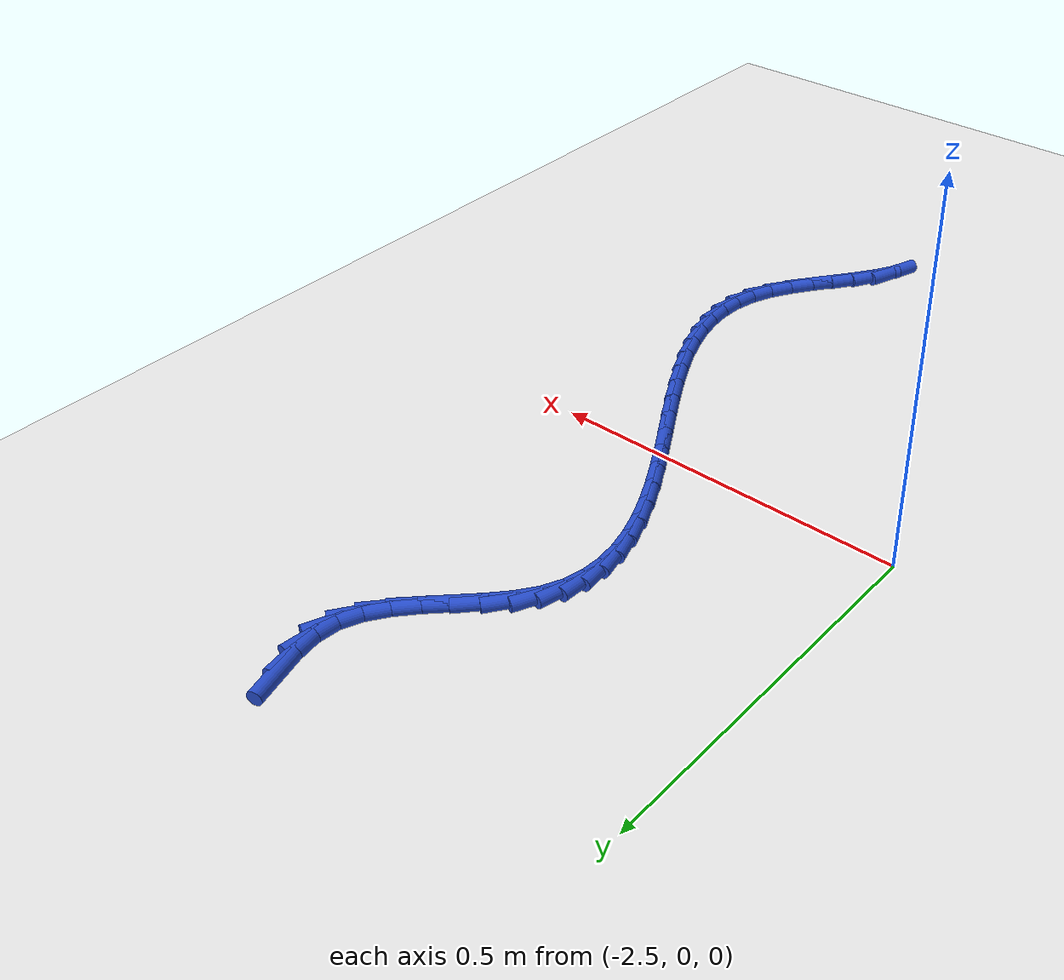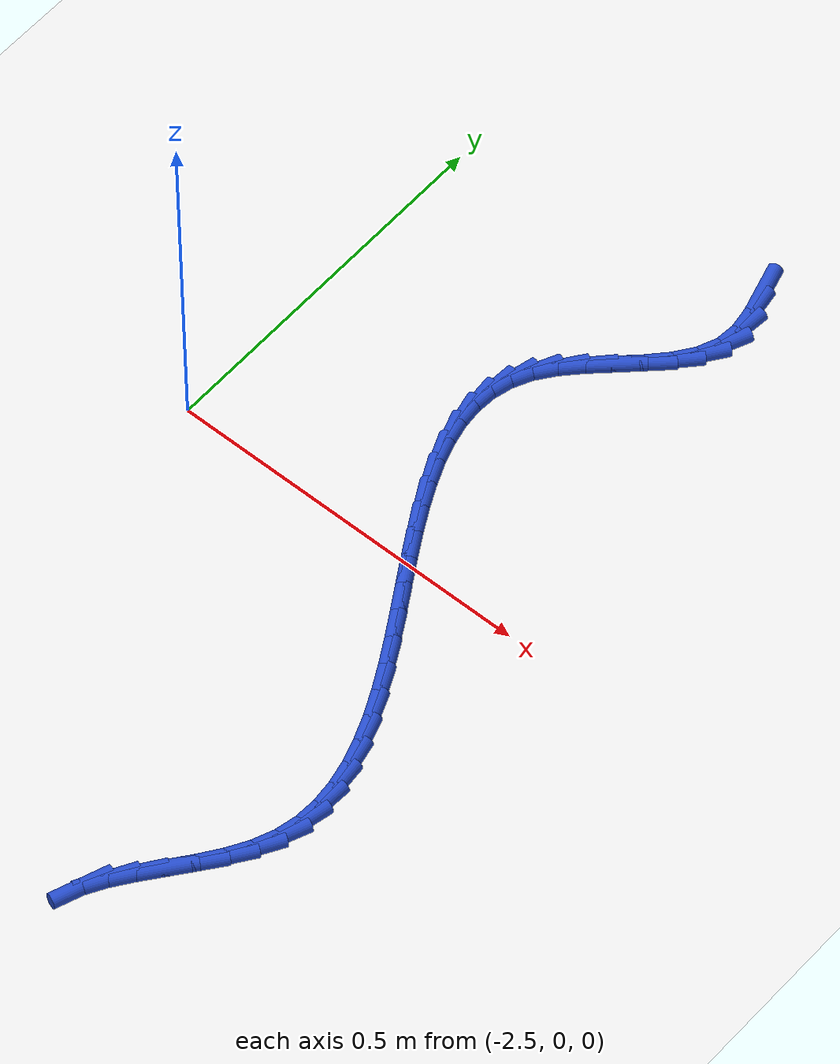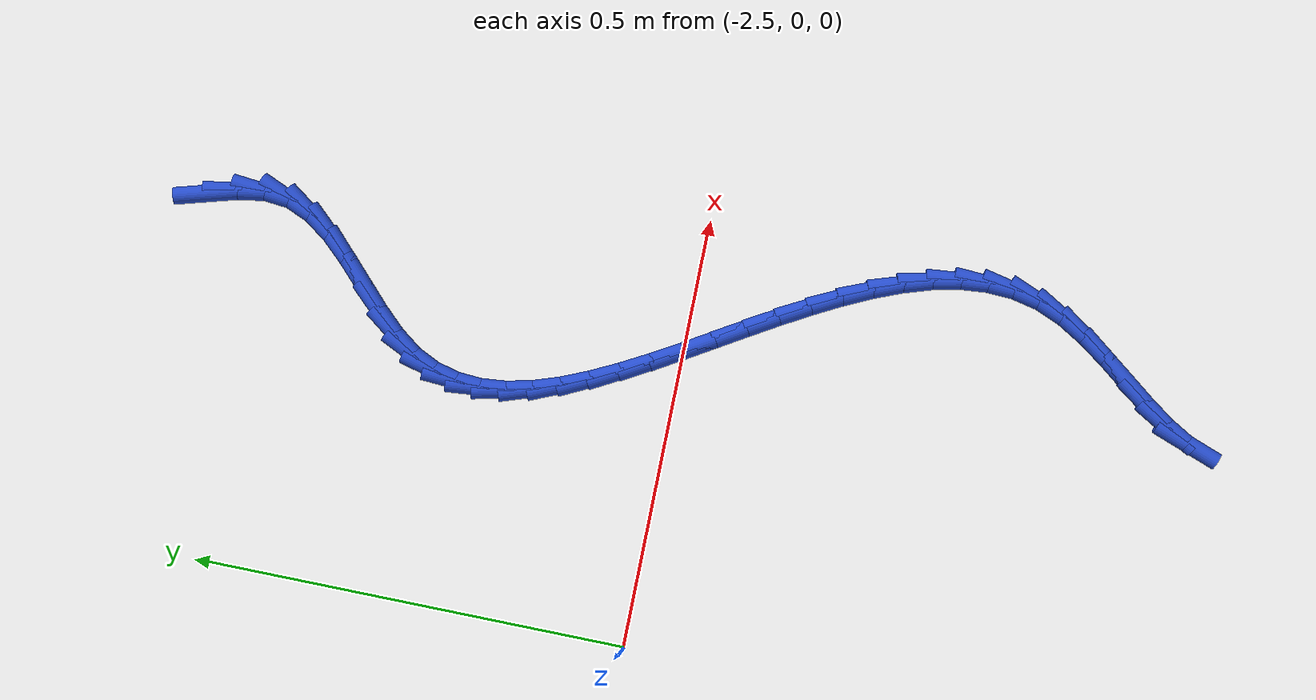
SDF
<sdf version="1.6">
 <world name="default">
  <model name="ground_plane">
   <static>1</static>
   <link name="link">
    <collision name="collision">
     <geometry><plane><normal>0 0 1</normal><size>100 100</size></plane></geometry>
     <surface><friction><ode><mu>100</mu><mu2>50</mu2></ode></friction></surface>
    </collision>
    <visual name="visual">
     <cast_shadows>0</cast_shadows>
     <geometry><plane><normal>0 0 1</normal><size>100 100</size></plane></geometry>
     <material>
      <script><uri>file://media/materials/scripts/gazebo.material</uri><name>Gazebo/WhiteGlow</name></script>
     </material>
    </visual>
   </link>
  </model>
  <model name="line">
   <link name="link_101">
    <pose>-2.085644784236383 0.5728864141865593 0.01 0 1.57 -1.2941965578196035</pose>
    <collision name="collision">
     <geometry><cylinder><radius>0.01</radius><length>0.08</length></cylinder></geometry>
    </collision>
    <visual name="visual">
     <material>
      <script><name>Gazebo/Blue</name><uri>file://media/materials/scripts/gazebo.material</uri></script>
     </material>
     <geometry><cylinder><radius>0.01</radius><length>0.08</length></cylinder></geometry>
    </visual>
   </link>
   <link name="link_102">
    <pose>-2.0764061748422598 0.5403419494465176 0.01 0 1.57 -1.4142231214673584</pose>
    <collision name="collision">
     <geometry><cylinder><radius>0.01</radius><length>0.08</length></cylinder></geometry>
    </collision>
    <visual name="visual">
     <material>
      <script><name>Gazebo/Blue</name><uri>file://media/materials/scripts/gazebo.material</uri></script>
     </material>
     <geometry><cylinder><radius>0.01</radius><length>0.08</length></cylinder></geometry>
    </visual>
   </link>
   <link name="link_103">
    <pose>-2.071404992420099 0.5086618980238968 0.01 0 1.57 1.4722902005393153</pose>
    <collision name="collision">
     <geometry><cylinder><radius>0.01</radius><length>0.08</length></cylinder></geometry>
    </collision>
    <visual name="visual">
     <material>
      <script><name>Gazebo/Blue</name><uri>file://media/materials/scripts/gazebo.material</uri></script>
     </material>
     <geometry><cylinder><radius>0.01</radius><length>0.08</length></cylinder></geometry>
    </visual>
   </link>
   <link name="link_104">
    <pose>-2.0743571449326654 0.47878966827754016 0.01 0 1.57 1.1666902768708167</pose>
    <collision name="collision">
     <geometry><cylinder><radius>0.01</radius><length>0.08</length></cylinder></geometry>
    </collision>
    <visual name="visual">
     <material>
      <script><name>Gazebo/Blue</name><uri>file://media/materials/scripts/gazebo.material</uri></script>
     </material>
     <geometry><cylinder><radius>0.01</radius><length>0.08</length></cylinder></geometry>
    </visual>
   </link>
   <link name="link_105">
    <pose>-2.086234959346095 0.45101451258702674 0.01 0 1.57 0.9498871708860781</pose>
    <collision name="collision">
     <geometry><cylinder><radius>0.01</radius><length>0.08</length></cylinder></geometry>
    </collision>
    <visual name="visual">
     <material>
      <script><name>Gazebo/Blue</name><uri>file://media/materials/scripts/gazebo.material</uri></script>
     </material>
     <geometry><cylinder><radius>0.01</radius><length>0.08</length></cylinder></geometry>
    </visual>
   </link>
   <link name="link_106">
    <pose>-2.1049219300670456 0.42488920852393375 0.01 0 1.57 0.8216461885218243</pose>
    <collision name="collision">
     <geometry><cylinder><radius>0.01</radius><length>0.08</length></cylinder></geometry>
    </collision>
    <visual name="visual">
     <material>
      <script><name>Gazebo/Blue</name><uri>file://media/materials/scripts/gazebo.material</uri></script>
     </material>
     <geometry><cylinder><radius>0.01</radius><length>0.08</length></cylinder></geometry>
    </visual>
   </link>
   <link name="link_107">
    <pose>-2.1281368053731637 0.39992725300237497 0.01 0 1.57 0.7617543772150307</pose>
    <collision name="collision">
     <geometry><cylinder><radius>0.01</radius><length>0.08</length></cylinder></geometry>
    </collision>
    <visual name="visual">
     <material>
      <script><name>Gazebo/Blue</name><uri>file://media/materials/scripts/gazebo.material</uri></script>
     </material>
     <geometry><cylinder><radius>0.01</radius><length>0.08</length></cylinder></geometry>
    </visual>
   </link>
   <link name="link_108">
    <pose>-2.153598333542096 0.3756421429364635 0.01 0 1.57 0.7585040846822607</pose>
    <collision name="collision">
     <geometry><cylinder><radius>0.01</radius><length>0.08</length></cylinder></geometry>
    </collision>
    <visual name="visual">
     <material>
      <script><name>Gazebo/Blue</name><uri>file://media/materials/scripts/gazebo.material</uri></script>
     </material>
     <geometry><cylinder><radius>0.01</radius><length>0.08</length></cylinder></geometry>
    </visual>
   </link>
   <link name="link_109">
    <pose>-2.179025262851488 0.3515473752403135 0.01 0 1.57 0.8123347120488061</pose>
    <collision name="collision">
     <geometry><cylinder><radius>0.01</radius><length>0.08</length></cylinder></geometry>
    </collision>
    <visual name="visual">
     <material>
      <script><name>Gazebo/Blue</name><uri>file://media/materials/scripts/gazebo.material</uri></script>
     </material>
     <geometry><cylinder><radius>0.01</radius><length>0.08</length></cylinder></geometry>
    </visual>
   </link>
   <link name="link_110">
    <pose>-2.2021363415789876 0.32715644682803824 0.01 0 1.57 0.9364791117253611</pose>
    <collision name="collision">
     <geometry><cylinder><radius>0.01</radius><length>0.08</length></cylinder></geometry>
    </collision>
    <visual name="visual">
     <material>
      <script><name>Gazebo/Blue</name><uri>file://media/materials/scripts/gazebo.material</uri></script>
     </material>
     <geometry><cylinder><radius>0.01</radius><length>0.08</length></cylinder></geometry>
    </visual>
   </link>
   <link name="link_111">
    <pose>-2.220656795651622 0.3019841653232681 0.01 0 1.57 1.1258001443256096</pose>
    <collision name="collision">
     <geometry><cylinder><radius>0.01</radius><length>0.08</length></cylinder></geometry>
    </collision>
    <visual name="visual">
     <material>
      <script><name>Gazebo/Blue</name><uri>file://media/materials/scripts/gazebo.material</uri></script>
     </material>
     <geometry><cylinder><radius>0.01</radius><length>0.08</length></cylinder></geometry>
    </visual>
   </link>
   <link name="link_112">
    <pose>-2.233181512044161 0.27572130851173116 0.01 0 1.57 1.3246680562674773</pose>
    <collision name="collision">
     <geometry><cylinder><radius>0.01</radius><length>0.08</length></cylinder></geometry>
    </collision>
    <visual name="visual">
     <material>
      <script><name>Gazebo/Blue</name><uri>file://media/materials/scripts/gazebo.material</uri></script>
     </material>
     <geometry><cylinder><radius>0.01</radius><length>0.08</length></cylinder></geometry>
    </visual>
   </link>
   <link name="link_113">
    <pose>-2.2400426625961867 0.2484101822831989 0.01 0 1.57 1.5094675941866054</pose>
    <collision name="collision">
     <geometry><cylinder><radius>0.01</radius><length>0.08</length></cylinder></geometry>
    </collision>
    <visual name="visual">
     <material>
      <script><name>Gazebo/Blue</name><uri>file://media/materials/scripts/gazebo.material</uri></script>
     </material>
     <geometry><cylinder><radius>0.01</radius><length>0.08</length></cylinder></geometry>
    </visual>
   </link>
   <link name="link_114">
    <pose>-2.241778928519817 0.2201348783333646 0.01 0 1.57 -1.4733559535589733</pose>
    <collision name="collision">
     <geometry><cylinder><radius>0.01</radius><length>0.08</length></cylinder></geometry>
    </collision>
    <visual name="visual">
     <material>
      <script><name>Gazebo/Blue</name><uri>file://media/materials/scripts/gazebo.material</uri></script>
     </material>
     <geometry><cylinder><radius>0.01</radius><length>0.08</length></cylinder></geometry>
    </visual>
   </link>
   <link name="link_115">
    <pose>-2.2389289910271684 0.19097948835792178 0.01 0 1.57 -1.3444539404133355</pose>
    <collision name="collision">
     <geometry><cylinder><radius>0.01</radius><length>0.08</length></cylinder></geometry>
    </collision>
    <visual name="visual">
     <material>
      <script><name>Gazebo/Blue</name><uri>file://media/materials/scripts/gazebo.material</uri></script>
     </material>
     <geometry><cylinder><radius>0.01</radius><length>0.08</length></cylinder></geometry>
    </visual>
   </link>
   <link name="link_116">
    <pose>-2.2320315313303594 0.16102810405256482 0.01 0 1.57 -1.2436196932765478</pose>
    <collision name="collision">
     <geometry><cylinder><radius>0.01</radius><length>0.08</length></cylinder></geometry>
    </collision>
    <visual name="visual">
     <material>
      <script><name>Gazebo/Blue</name><uri>file://media/materials/scripts/gazebo.material</uri></script>
     </material>
     <geometry><cylinder><radius>0.01</radius><length>0.08</length></cylinder></geometry>
    </visual>
   </link>
   <link name="link_117">
    <pose>-2.221625230641507 0.13036481711298703 0.01 0 1.57 -1.1668231382663117</pose>
    <collision name="collision">
     <geometry><cylinder><radius>0.01</radius><length>0.08</length></cylinder></geometry>
    </collision>
    <visual name="visual">
     <material>
      <script><name>Gazebo/Blue</name><uri>file://media/materials/scripts/gazebo.material</uri></script>
     </material>
     <geometry><cylinder><radius>0.01</radius><length>0.08</length></cylinder></geometry>
    </visual>
   </link>
   <link name="link_118">
    <pose>-2.2082487701727276 0.0990737192348823 0.01 0 1.57 -1.1099034382130033</pose>
    <collision name="collision">
     <geometry><cylinder><radius>0.01</radius><length>0.08</length></cylinder></geometry>
    </collision>
    <visual name="visual">
     <material>
      <script><name>Gazebo/Blue</name><uri>file://media/materials/scripts/gazebo.material</uri></script>
     </material>
     <geometry><cylinder><radius>0.01</radius><length>0.08</length></cylinder></geometry>
    </visual>
   </link>
   <link name="link_119">
    <pose>-2.192440831136139 0.06723890211394377 0.01 0 1.57 -1.0694094173373847</pose>
    <collision name="collision">
     <geometry><cylinder><radius>0.01</radius><length>0.08</length></cylinder></geometry>
    </collision>
    <visual name="visual">
     <material>
      <script><name>Gazebo/Blue</name><uri>file://media/materials/scripts/gazebo.material</uri></script>
     </material>
     <geometry><cylinder><radius>0.01</radius><length>0.08</length></cylinder></geometry>
    </visual>
   </link>
   <link name="link_120">
    <pose>-2.1747400947438598 0.034944457445866134 0.01 0 1.57 -1.0427820835026536</pose>
    <collision name="collision">
     <geometry><cylinder><radius>0.01</radius><length>0.08</length></cylinder></geometry>
    </collision>
    <visual name="visual">
     <material>
      <script><name>Gazebo/Blue</name><uri>file://media/materials/scripts/gazebo.material</uri></script>
     </material>
     <geometry><cylinder><radius>0.01</radius><length>0.08</length></cylinder></geometry>
    </visual>
   </link>
   <link name="link_121">
    <pose>-2.1556852422080053 0.0022744769263426147 0.01 0 1.57 -1.0282951634422843</pose>
    <collision name="collision">
     <geometry><cylinder><radius>0.01</radius><length>0.08</length></cylinder></geometry>
    </collision>
    <visual name="visual">
     <material>
      <script><name>Gazebo/Blue</name><uri>file://media/materials/scripts/gazebo.material</uri></script>
     </material>
     <geometry><cylinder><radius>0.01</radius><length>0.08</length></cylinder></geometry>
    </visual>
   </link>
   <link name="link_122">
    <pose>-2.1358149547406944 -0.03068694774893303 0.01 0 1.57 -1.024946230609124</pose>
    <collision name="collision">
     <geometry><cylinder><radius>0.01</radius><length>0.08</length></cylinder></geometry>
    </collision>
    <visual name="visual">
     <material>
      <script><name>Gazebo/Blue</name><uri>file://media/materials/scripts/gazebo.material</uri></script>
     </material>
     <geometry><cylinder><radius>0.01</radius><length>0.08</length></cylinder></geometry>
    </visual>
   </link>
   <link name="link_123">
    <pose>-2.1156679135540437 -0.0638557248842671 0.01 0 1.57 -1.0323693682675454</pose>
    <collision name="collision">
     <geometry><cylinder><radius>0.01</radius><length>0.08</length></cylinder></geometry>
    </collision>
    <visual name="visual">
     <material>
      <script><name>Gazebo/Blue</name><uri>file://media/materials/scripts/gazebo.material</uri></script>
     </material>
     <geometry><cylinder><radius>0.01</radius><length>0.08</length></cylinder></geometry>
    </visual>
   </link>
   <link name="link_124">
    <pose>-2.0957827998601704 -0.09714776278396578 0.01 0 1.57 -1.0507889129782197</pose>
    <collision name="collision">
     <geometry><cylinder><radius>0.01</radius><length>0.08</length></cylinder></geometry>
    </collision>
    <visual name="visual">
     <material>
      <script><name>Gazebo/Blue</name><uri>file://media/materials/scripts/gazebo.material</uri></script>
     </material>
     <geometry><cylinder><radius>0.01</radius><length>0.08</length></cylinder></geometry>
    </visual>
   </link>
   <link name="link_125">
    <pose>-2.076698294871192 -0.1304789697523363 0.01 0 1.57 -1.0810137336472219</pose>
    <collision name="collision">
     <geometry><cylinder><radius>0.01</radius><length>0.08</length></cylinder></geometry>
    </collision>
    <visual name="visual">
     <material>
      <script><name>Gazebo/Blue</name><uri>file://media/materials/scripts/gazebo.material</uri></script>
     </material>
     <geometry><cylinder><radius>0.01</radius><length>0.08</length></cylinder></geometry>
    </visual>
   </link>
   <link name="link_126">
    <pose>-2.0589530797992266 -0.1637652540936832 0.01 0 1.57 -1.1244596100738409</pose>
    <collision name="collision">
     <geometry><cylinder><radius>0.01</radius><length>0.08</length></cylinder></geometry>
    </collision>
    <visual name="visual">
     <material>
      <script><name>Gazebo/Blue</name><uri>file://media/materials/scripts/gazebo.material</uri></script>
     </material>
     <geometry><cylinder><radius>0.01</radius><length>0.08</length></cylinder></geometry>
    </visual>
   </link>
   <link name="link_127">
    <pose>-2.04308583585639 -0.1969225241123135 0.01 0 1.57 -1.183168601840552</pose>
    <collision name="collision">
     <geometry><cylinder><radius>0.01</radius><length>0.08</length></cylinder></geometry>
    </collision>
    <visual name="visual">
     <material>
      <script><name>Gazebo/Blue</name><uri>file://media/materials/scripts/gazebo.material</uri></script>
     </material>
     <geometry><cylinder><radius>0.01</radius><length>0.08</length></cylinder></geometry>
    </visual>
   </link>
   <link name="link_128">
    <pose>-2.029635244254801 -0.22986668811253358 0.01 0 1.57 -1.259753895887236</pose>
    <collision name="collision">
     <geometry><cylinder><radius>0.01</radius><length>0.08</length></cylinder></geometry>
    </collision>
    <visual name="visual">
     <material>
      <script><name>Gazebo/Blue</name><uri>file://media/materials/scripts/gazebo.material</uri></script>
     </material>
     <geometry><cylinder><radius>0.01</radius><length>0.08</length></cylinder></geometry>
    </visual>
   </link>
   <link name="link_129">
    <pose>-2.0191399862065764 -0.2625136543986497 0.01 0 1.57 -1.357121413902334</pose>
    <collision name="collision">
     <geometry><cylinder><radius>0.01</radius><length>0.08</length></cylinder></geometry>
    </collision>
    <visual name="visual">
     <material>
      <script><name>Gazebo/Blue</name><uri>file://media/materials/scripts/gazebo.material</uri></script>
     </material>
     <geometry><cylinder><radius>0.01</radius><length>0.08</length></cylinder></geometry>
    </visual>
   </link>
   <link name="link_130">
    <pose>-2.0121387429238333 -0.2947793312749682 0.01 0 1.57 -1.4777163966167384</pose>
    <collision name="collision">
     <geometry><cylinder><radius>0.01</radius><length>0.08</length></cylinder></geometry>
    </collision>
    <visual name="visual">
     <material>
      <script><name>Gazebo/Blue</name><uri>file://media/materials/scripts/gazebo.material</uri></script>
     </material>
     <geometry><cylinder><radius>0.01</radius><length>0.08</length></cylinder></geometry>
    </visual>
   </link>
   <link name="link_131">
    <pose>-2.009170195618689 -0.3265796270457952 0.01 0 1.57 1.5195520238379696</pose>
    <collision name="collision">
     <geometry><cylinder><radius>0.01</radius><length>0.08</length></cylinder></geometry>
    </collision>
    <visual name="visual">
     <material>
      <script><name>Gazebo/Blue</name><uri>file://media/materials/scripts/gazebo.material</uri></script>
     </material>
     <geometry><cylinder><radius>0.01</radius><length>0.08</length></cylinder></geometry>
    </visual>
   </link>
   <link name="link_132">
    <pose>-2.0107730255032608 -0.35783045001543773 0.01 0 1.57 1.3549598158827731</pose>
    <collision name="collision">
     <geometry><cylinder><radius>0.01</radius><length>0.08</length></cylinder></geometry>
    </collision>
    <visual name="visual">
     <material>
      <script><name>Gazebo/Blue</name><uri>file://media/materials/scripts/gazebo.material</uri></script>
     </material>
     <geometry><cylinder><radius>0.01</radius><length>0.08</length></cylinder></geometry>
    </visual>
   </link>
   <link name="link_133">
    <pose>-2.017485913789667 -0.3884477084882007 0.01 0 1.57 1.1810823155897303</pose>
    <collision name="collision">
     <geometry><cylinder><radius>0.01</radius><length>0.08</length></cylinder></geometry>
    </collision>
    <visual name="visual">
     <material>
      <script><name>Gazebo/Blue</name><uri>file://media/materials/scripts/gazebo.material</uri></script>
     </material>
     <geometry><cylinder><radius>0.01</radius><length>0.08</length></cylinder></geometry>
    </visual>
   </link>
   <link name="link_134">
    <pose>-2.029768034096768 -0.418351538524091 0.01 0 1.57 1.0409409029107037</pose>
    <collision name="collision">
     <geometry><cylinder><radius>0.01</radius><length>0.08</length></cylinder></geometry>
    </collision>
    <visual name="visual">
     <material>
      <script><name>Gazebo/Blue</name><uri>file://media/materials/scripts/gazebo.material</uri></script>
     </material>
     <geometry><cylinder><radius>0.01</radius><length>0.08</length></cylinder></geometry>
    </visual>
   </link>
   <link name="link_135">
    <pose>-2.0468567926995234 -0.4475270427308458 0.01 0 1.57 0.954499231461391</pose>
    <collision name="collision">
     <geometry><cylinder><radius>0.01</radius><length>0.08</length></cylinder></geometry>
    </collision>
    <visual name="visual">
     <material>
      <script><name>Gazebo/Blue</name><uri>file://media/materials/scripts/gazebo.material</uri></script>
     </material>
     <geometry><cylinder><radius>0.01</radius><length>0.08</length></cylinder></geometry>
    </visual>
   </link>
   <link name="link_136">
    <pose>-2.0670323852400063 -0.47601022266237286 0.01 0 1.57 0.9126064745602521</pose>
    <collision name="collision">
     <geometry><cylinder><radius>0.01</radius><length>0.08</length></cylinder></geometry>
    </collision>
    <visual name="visual">
     <material>
      <script><name>Gazebo/Blue</name><uri>file://media/materials/scripts/gazebo.material</uri></script>
     </material>
     <geometry><cylinder><radius>0.01</radius><length>0.08</length></cylinder></geometry>
    </visual>
   </link>
   <link name="link_137">
    <pose>-2.088549400811995 -0.503838441481277 0.01 0 1.57 0.9109171813378932</pose>
    <collision name="collision">
     <geometry><cylinder><radius>0.01</radius><length>0.08</length></cylinder></geometry>
    </collision>
    <visual name="visual">
     <material>
      <script><name>Gazebo/Blue</name><uri>file://media/materials/scripts/gazebo.material</uri></script>
     </material>
     <geometry><cylinder><radius>0.01</radius><length>0.08</length></cylinder></geometry>
    </visual>
   </link>
   <link name="link_138">
    <pose>-2.1096624285092695 -0.5310490623501638 0.01 0 1.57 0.9519923711084816</pose>
    <collision name="collision">
     <geometry><cylinder><radius>0.01</radius><length>0.08</length></cylinder></geometry>
    </collision>
    <visual name="visual">
     <material>
      <script><name>Gazebo/Blue</name><uri>file://media/materials/scripts/gazebo.material</uri></script>
     </material>
     <geometry><cylinder><radius>0.01</radius><length>0.08</length></cylinder></geometry>
    </visual>
   </link>
   <link name="link_139">
    <pose>-2.128626057425609 -0.5576794484316382 0.01 0 1.57 1.0469909903696692</pose>
    <collision name="collision">
     <geometry><cylinder><radius>0.01</radius><length>0.08</length></cylinder></geometry>
    </collision>
    <visual name="visual">
     <material>
      <script><name>Gazebo/Blue</name><uri>file://media/materials/scripts/gazebo.material</uri></script>
     </material>
     <geometry><cylinder><radius>0.01</radius><length>0.08</length></cylinder></geometry>
    </visual>
   </link>
   <link name="link_140">
    <pose>-2.143694876654791 -0.5837669628883064 0.01 0 1.57 1.2176803505688625</pose>
    <collision name="collision">
     <geometry><cylinder><radius>0.01</radius><length>0.08</length></cylinder></geometry>
    </collision>
    <visual name="visual">
     <material>
      <script><name>Gazebo/Blue</name><uri>file://media/materials/scripts/gazebo.material</uri></script>
     </material>
     <geometry><cylinder><radius>0.01</radius><length>0.08</length></cylinder></geometry>
    </visual>
   </link>
  </model>
 </world>
</sdf>
